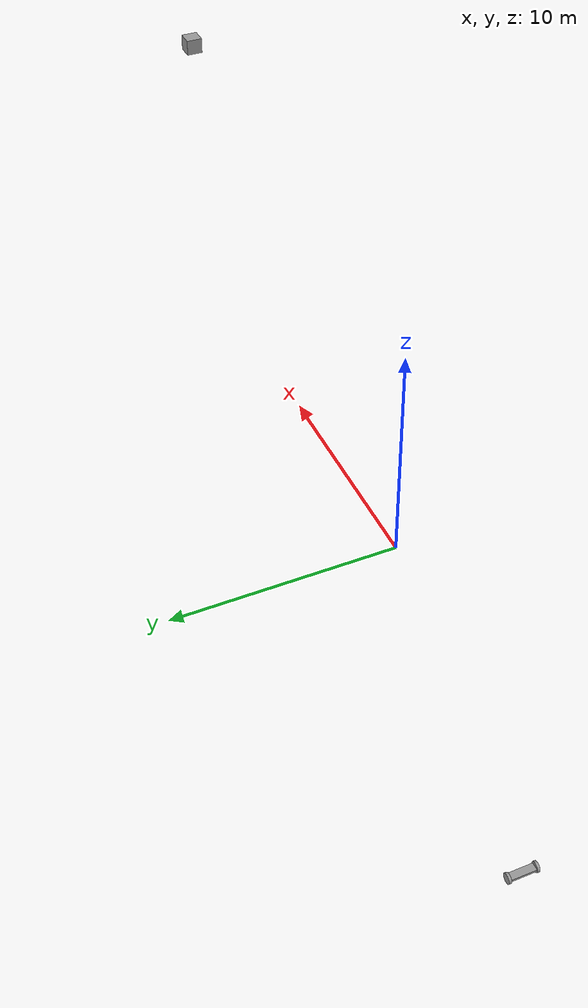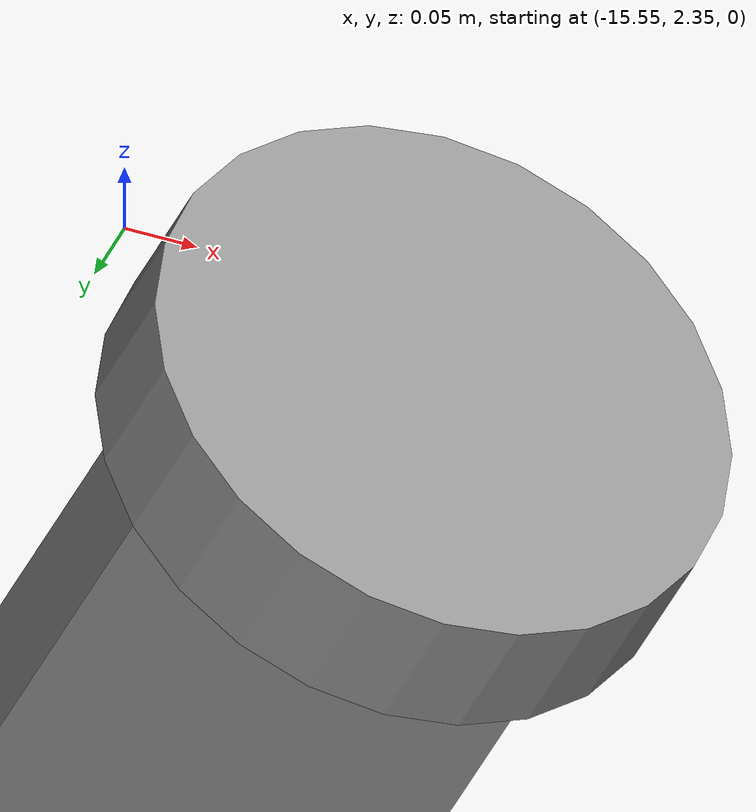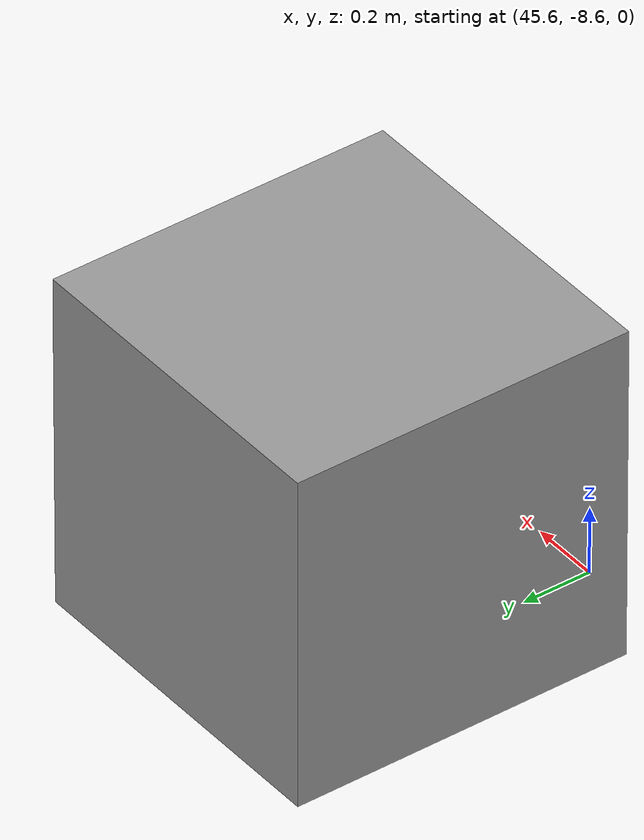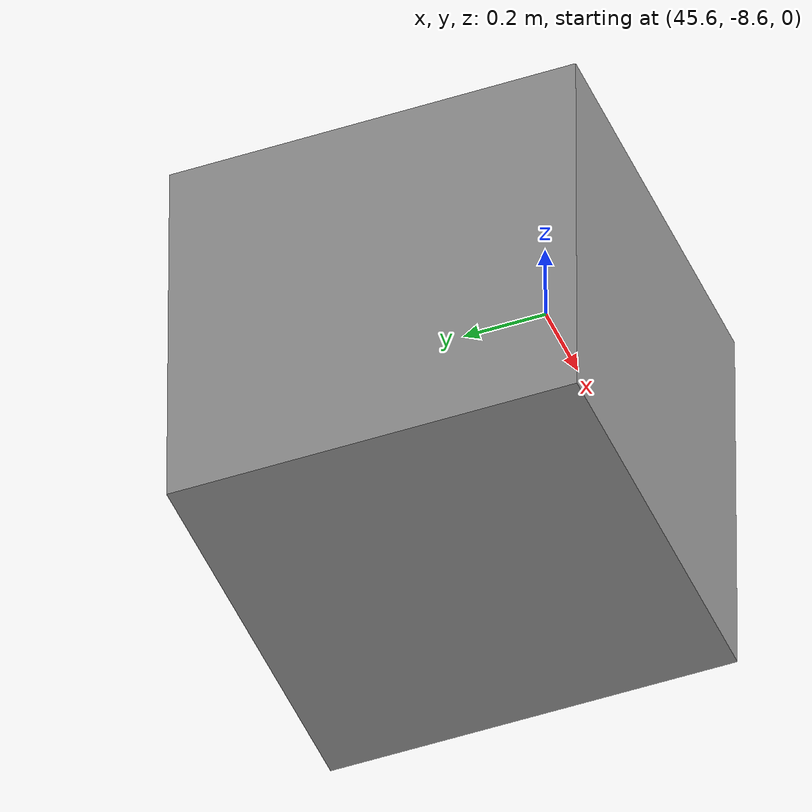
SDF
<?xml version='1.0'?>
<sdf version='1.7'>
  <model name='robot'>
    <link name='link_3'>
      <inertial>
        <mass>1</mass>
        <inertia>
          <ixx>0.166667</ixx>
          <ixy>0</ixy>
          <ixz>0</ixz>
          <iyy>0.166667</iyy>
          <iyz>0</iyz>
          <izz>0.166667</izz>
        </inertia>
      </inertial>
      <pose>46.0647 -8.18895 0.225 0 -0 0</pose>
      <visual name='visual'>
        <pose>0 0 0 0 -0 0</pose>
        <geometry>
          <box>
            <size>1 1 1</size>
          </box>
        </geometry>
        <material>
          <lighting>1</lighting>
          <script>
            <uri>file://media/materials/scripts/gazebo.material</uri>
            <name>Gazebo/Grey</name>
          </script>
          <shader type='pixel'/>
        </material>
        <transparency>0</transparency>
        <cast_shadows>1</cast_shadows>
      </visual>
      <collision name='collision'>
        <laser_retro>0</laser_retro>
        <max_contacts>10</max_contacts>
        <pose>0 0 0 0 -0 0</pose>
        <geometry>
          <box>
            <size>1 1 1</size>
          </box>
        </geometry>
        <surface>
          <friction>
            <ode>
              <mu>1</mu>
              <mu2>1</mu2>
              <fdir1>0 0 0</fdir1>
              <slip1>0</slip1>
              <slip2>0</slip2>
            </ode>
            <torsional>
              <coefficient>1</coefficient>
              <patch_radius>0</patch_radius>
              <surface_radius>0</surface_radius>
              <use_patch_radius>1</use_patch_radius>
              <ode>
                <slip>0</slip>
              </ode>
            </torsional>
          </friction>
          <bounce>
            <restitution_coefficient>0</restitution_coefficient>
            <threshold>1e+06</threshold>
          </bounce>
          <contact>
            <collide_without_contact>0</collide_without_contact>
            <collide_without_contact_bitmask>1</collide_without_contact_bitmask>
            <collide_bitmask>1</collide_bitmask>
            <ode>
              <soft_cfm>0</soft_cfm>
              <soft_erp>0.2</soft_erp>
              <kp>1e+13</kp>
              <kd>1</kd>
              <max_vel>0.01</max_vel>
              <min_depth>0</min_depth>
            </ode>
            <bullet>
              <split_impulse>1</split_impulse>
              <split_impulse_penetration_threshold>-0.01</split_impulse_penetration_threshold>
              <soft_cfm>0</soft_cfm>
              <soft_erp>0.2</soft_erp>
              <kp>1e+13</kp>
              <kd>1</kd>
            </bullet>
          </contact>
        </surface>
      </collision>
    </link>
    <link name='link_4'>
      <inertial>
        <mass>1</mass>
        <inertia>
          <ixx>0.166667</ixx>
          <ixy>0</ixy>
          <ixz>0</ixz>
          <iyy>0.166667</iyy>
          <iyz>0</iyz>
          <izz>0.166667</izz>
        </inertia>
        <pose>0 0 0 0 -0 0</pose>
      </inertial>
      <pose>-15.3383 2.92797 -0.075 0 -0 0</pose>
      <gravity>1</gravity>
      <self_collide>0</self_collide>
      <kinematic>0</kinematic>
      <enable_wind>0</enable_wind>
      <visual name='visual'>
        <pose>0 0 0 0 -0 0</pose>
        <geometry>
          <box>
            <size>0.3 1 0.1</size>
          </box>
        </geometry>
        <material>
          <lighting>1</lighting>
          <script>
            <uri>file://media/materials/scripts/gazebo.material</uri>
            <name>Gazebo/Grey</name>
          </script>
          <shader type='pixel'>
            <normal_map>__default__</normal_map>
          </shader>
          <ambient>0.3 0.3 0.3 1</ambient>
          <diffuse>0.7 0.7 0.7 1</diffuse>
          <specular>0.01 0.01 0.01 1</specular>
          <emissive>0 0 0 1</emissive>
        </material>
        <transparency>0</transparency>
        <cast_shadows>1</cast_shadows>
      </visual>
      <collision name='collision'>
        <laser_retro>0</laser_retro>
        <max_contacts>10</max_contacts>
        <pose>0 0 0 0 -0 0</pose>
        <geometry>
          <box>
            <size>0.3 1 0.1</size>
          </box>
        </geometry>
        <surface>
          <friction>
            <ode>
              <mu>1</mu>
              <mu2>1</mu2>
              <fdir1>0 0 0</fdir1>
              <slip1>0</slip1>
              <slip2>0</slip2>
            </ode>
            <torsional>
              <coefficient>1</coefficient>
              <patch_radius>0</patch_radius>
              <surface_radius>0</surface_radius>
              <use_patch_radius>1</use_patch_radius>
              <ode>
                <slip>0</slip>
              </ode>
            </torsional>
          </friction>
          <bounce>
            <restitution_coefficient>0</restitution_coefficient>
            <threshold>1e+06</threshold>
          </bounce>
          <contact>
            <collide_without_contact>0</collide_without_contact>
            <collide_without_contact_bitmask>1</collide_without_contact_bitmask>
            <collide_bitmask>1</collide_bitmask>
            <ode>
              <soft_cfm>0</soft_cfm>
              <soft_erp>0.2</soft_erp>
              <kp>1e+13</kp>
              <kd>1</kd>
              <max_vel>0.01</max_vel>
              <min_depth>0</min_depth>
            </ode>
            <bullet>
              <split_impulse>1</split_impulse>
              <split_impulse_penetration_threshold>-0.01</split_impulse_penetration_threshold>
              <soft_cfm>0</soft_cfm>
              <soft_erp>0.2</soft_erp>
              <kp>1e+13</kp>
              <kd>1</kd>
            </bullet>
          </contact>
        </surface>
      </collision>
    </link>
    <link name='link_5'>
      <inertial>
        <mass>1</mass>
        <inertia>
          <ixx>0.145833</ixx>
          <ixy>0</ixy>
          <ixz>0</ixz>
          <iyy>0.145833</iyy>
          <iyz>0</iyz>
          <izz>0.125</izz>
        </inertia>
        <pose>0 0 0 0 -0 0</pose>
      </inertial>
      <pose>-15.3383 2.37796 -0.075 1.5707 -0 0</pose>
      <gravity>1</gravity>
      <self_collide>0</self_collide>
      <kinematic>0</kinematic>
      <enable_wind>0</enable_wind>
      <visual name='visual'>
        <pose>0 0 0 0 -0 0</pose>
        <geometry>
          <cylinder>
            <radius>0.2</radius>
            <length>0.1</length>
          </cylinder>
        </geometry>
        <material>
          <lighting>1</lighting>
          <script>
            <uri>file://media/materials/scripts/gazebo.material</uri>
            <name>Gazebo/Grey</name>
          </script>
          <shader type='pixel'>
            <normal_map>__default__</normal_map>
          </shader>
          <ambient>0.3 0.3 0.3 1</ambient>
          <diffuse>0.7 0.7 0.7 1</diffuse>
          <specular>0.01 0.01 0.01 1</specular>
          <emissive>0 0 0 1</emissive>
        </material>
        <transparency>0</transparency>
        <cast_shadows>1</cast_shadows>
      </visual>
      <collision name='collision'>
        <laser_retro>0</laser_retro>
        <max_contacts>10</max_contacts>
        <pose>0 0 0 0 -0 0</pose>
        <geometry>
          <cylinder>
            <radius>0.2</radius>
            <length>0.1</length>
          </cylinder>
        </geometry>
        <surface>
          <friction>
            <ode>
              <mu>1</mu>
              <mu2>1</mu2>
              <fdir1>0 0 0</fdir1>
              <slip1>0</slip1>
              <slip2>0</slip2>
            </ode>
            <torsional>
              <coefficient>1</coefficient>
              <patch_radius>0</patch_radius>
              <surface_radius>0</surface_radius>
              <use_patch_radius>1</use_patch_radius>
              <ode>
                <slip>0</slip>
              </ode>
            </torsional>
          </friction>
          <bounce>
            <restitution_coefficient>0</restitution_coefficient>
            <threshold>1e+06</threshold>
          </bounce>
          <contact>
            <collide_without_contact>0</collide_without_contact>
            <collide_without_contact_bitmask>1</collide_without_contact_bitmask>
            <collide_bitmask>1</collide_bitmask>
            <ode>
              <soft_cfm>0</soft_cfm>
              <soft_erp>0.2</soft_erp>
              <kp>1e+13</kp>
              <kd>1</kd>
              <max_vel>0.01</max_vel>
              <min_depth>0</min_depth>
            </ode>
            <bullet>
              <split_impulse>1</split_impulse>
              <split_impulse_penetration_threshold>-0.01</split_impulse_penetration_threshold>
              <soft_cfm>0</soft_cfm>
              <soft_erp>0.2</soft_erp>
              <kp>1e+13</kp>
              <kd>1</kd>
            </bullet>
          </contact>
        </surface>
      </collision>
    </link>
    <link name='link_5_clone'>
      <inertial>
        <mass>1</mass>
        <inertia>
          <ixx>0.145833</ixx>
          <ixy>0</ixy>
          <ixz>0</ixz>
          <iyy>0.145833</iyy>
          <iyz>0</iyz>
          <izz>0.125</izz>
        </inertia>
        <pose>0 0 0 0 -0 0</pose>
      </inertial>
      <pose>-15.3383 3.47799 -0.075 1.5707 -0 0</pose>
      <gravity>1</gravity>
      <self_collide>0</self_collide>
      <kinematic>0</kinematic>
      <enable_wind>0</enable_wind>
      <visual name='visual'>
        <pose>0 0 0 0 -0 0</pose>
        <geometry>
          <cylinder>
            <radius>0.2</radius>
            <length>0.1</length>
          </cylinder>
        </geometry>
        <material>
          <lighting>1</lighting>
          <script>
            <uri>file://media/materials/scripts/gazebo.material</uri>
            <name>Gazebo/Grey</name>
          </script>
          <shader type='pixel'>
            <normal_map>__default__</normal_map>
          </shader>
          <ambient>0.3 0.3 0.3 1</ambient>
          <diffuse>0.7 0.7 0.7 1</diffuse>
          <specular>0.01 0.01 0.01 1</specular>
          <emissive>0 0 0 1</emissive>
        </material>
        <transparency>0</transparency>
        <cast_shadows>1</cast_shadows>
      </visual>
      <collision name='collision'>
        <laser_retro>0</laser_retro>
        <max_contacts>10</max_contacts>
        <pose>0 0 0 0 -0 0</pose>
        <geometry>
          <cylinder>
            <radius>0.2</radius>
            <length>0.1</length>
          </cylinder>
        </geometry>
        <surface>
          <friction>
            <ode>
              <mu>1</mu>
              <mu2>1</mu2>
              <fdir1>0 0 0</fdir1>
              <slip1>0</slip1>
              <slip2>0</slip2>
            </ode>
            <torsional>
              <coefficient>1</coefficient>
              <patch_radius>0</patch_radius>
              <surface_radius>0</surface_radius>
              <use_patch_radius>1</use_patch_radius>
              <ode>
                <slip>0</slip>
              </ode>
            </torsional>
          </friction>
          <bounce>
            <restitution_coefficient>0</restitution_coefficient>
            <threshold>1e+06</threshold>
          </bounce>
          <contact>
            <collide_without_contact>0</collide_without_contact>
            <collide_without_contact_bitmask>1</collide_without_contact_bitmask>
            <collide_bitmask>1</collide_bitmask>
            <ode>
              <soft_cfm>0</soft_cfm>
              <soft_erp>0.2</soft_erp>
              <kp>1e+13</kp>
              <kd>1</kd>
              <max_vel>0.01</max_vel>
              <min_depth>0</min_depth>
            </ode>
            <bullet>
              <split_impulse>1</split_impulse>
              <split_impulse_penetration_threshold>-0.01</split_impulse_penetration_threshold>
              <soft_cfm>0</soft_cfm>
              <soft_erp>0.2</soft_erp>
              <kp>1e+13</kp>
              <kd>1</kd>
            </bullet>
          </contact>
        </surface>
      </collision>
    </link>
    <joint name='link_4_JOINT_0' type='revolute'>
      <parent>link_4</parent>
      <child>link_5</child>
      <pose>0 0 0 0 -0 0</pose>
      <axis>
        <xyz>0 0 1</xyz>
        <limit>
          <lower>-1.79769e+308</lower>
          <upper>1.79769e+308</upper>
          <effort>-1</effort>
          <velocity>-1</velocity>
        </limit>
        <dynamics>
          <spring_reference>0</spring_reference>
          <spring_stiffness>0</spring_stiffness>
          <damping>0</damping>
        </dynamics>
      </axis>
      <physics>
        <ode>
          <limit>
            <cfm>0</cfm>
            <erp>0.2</erp>
          </limit>
          <suspension>
            <cfm>0</cfm>
            <erp>0.2</erp>
          </suspension>
        </ode>
      </physics>
    </joint>
    <joint name='link_4_JOINT_1' type='revolute'>
      <parent>link_4</parent>
      <child>link_5</child>
      <pose>0 0 0 0 -0 0</pose>
      <axis>
        <xyz>0 0 1</xyz>
        <limit>
          <lower>-1.79769e+308</lower>
          <upper>1.79769e+308</upper>
          <effort>-1</effort>
          <velocity>-1</velocity>
        </limit>
        <dynamics>
          <spring_reference>0</spring_reference>
          <spring_stiffness>0</spring_stiffness>
          <damping>0</damping>
        </dynamics>
      </axis>
      <physics>
        <ode>
          <limit>
            <cfm>0</cfm>
            <erp>0.2</erp>
          </limit>
          <suspension>
            <cfm>0</cfm>
            <erp>0.2</erp>
          </suspension>
        </ode>
      </physics>
    </joint>
    <joint name='link_4_JOINT_2' type='revolute'>
      <parent>link_4</parent>
      <child>link_5_clone</child>
      <pose>0 0 0 0 -0 0</pose>
      <axis>
        <xyz>0 0 1</xyz>
        <limit>
          <lower>-1.79769e+308</lower>
          <upper>1.79769e+308</upper>
          <effort>-1</effort>
          <velocity>-1</velocity>
        </limit>
        <dynamics>
          <spring_reference>0</spring_reference>
          <spring_stiffness>0</spring_stiffness>
          <damping>0</damping>
        </dynamics>
      </axis>
      <physics>
        <ode>
          <limit>
            <cfm>0</cfm>
            <erp>0.2</erp>
          </limit>
          <suspension>
            <cfm>0</cfm>
            <erp>0.2</erp>
          </suspension>
        </ode>
      </physics>
    </joint>
    <static>0</static>
    <allow_auto_disable>1</allow_auto_disable>
  </model>
</sdf>
